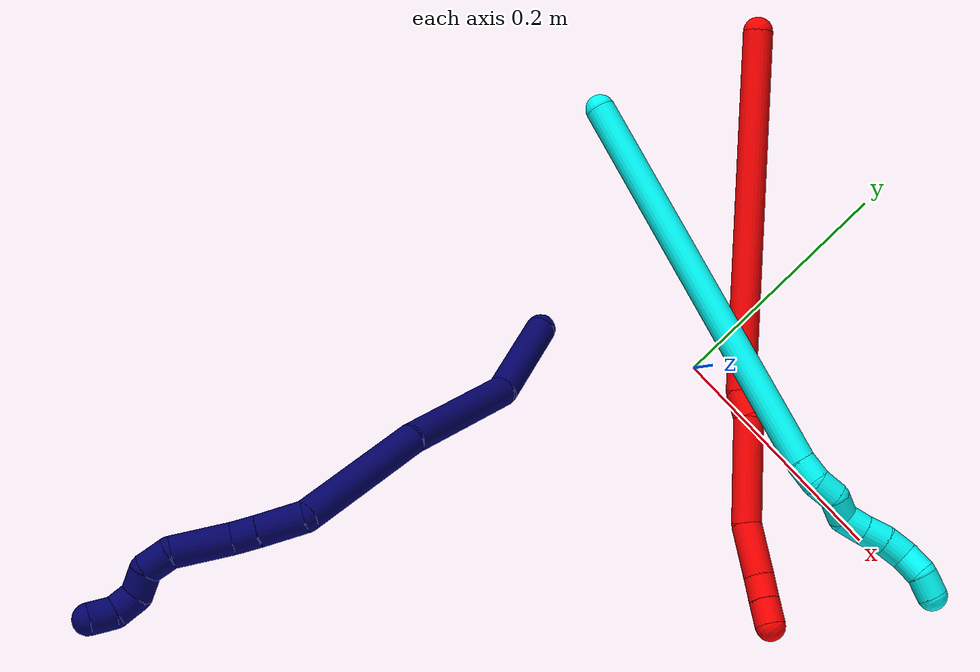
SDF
<sdf version="1.7">
 <world name="default">
  <model name="photoneo_s_sensor">
   <static>1</static>
   <pose>0 0 2 1.57079 1.57079 3.14159</pose>
   <link name="link">
    <inertial><mass>0.1</mass></inertial>
    <sensor name="sensor" type="depth">
     <update_rate>30</update_rate>
     <camera>
      <horizontal_fov>1.22</horizontal_fov>
      <image><width>1920</width><height>1200</height><format>B8G8R8</format></image>
      <clip><near>0.1</near><far>4</far></clip>
      <depth_camera><output>points</output></depth_camera>
     </camera>
     <plugin name="camera_plugin" filename="libgazebo_ros_depth_camera.so">
      <baseline>0.2</baseline>
      <alwaysOn>1</alwaysOn>
      <updateRate>0.0</updateRate>
      <cameraName>camera_ir</cameraName>
      <imageTopicName>/camera/color/image_raw</imageTopicName>
      <cameraInfoTopicName>/camera/color/camera_info</cameraInfoTopicName>
      <depthImageTopicName>/camera/depth/image_raw</depthImageTopicName>
      <depthImageCameraInfoTopicName>/camera/depth/camera_info</depthImageCameraInfoTopicName>
      <pointCloudTopicName>/camera/depth/points</pointCloudTopicName>
      <frameName>fr_optical</frameName>
      <pointCloudCutoff>0.1</pointCloudCutoff>
      <pointCloudCutoffMax>2.0</pointCloudCutoffMax>
      <distortionK1>0</distortionK1>
      <distortionK2>0</distortionK2>
      <distortionK3>0</distortionK3>
      <distortionT1>0</distortionT1>
      <distortionT2>0</distortionT2>
      <CxPrime>0</CxPrime>
      <Cx>0</Cx>
      <Cy>0</Cy>
      <focalLength>0</focalLength>
      <hackBaseline>0</hackBaseline>
     </plugin>
    </sensor>
   </link>
  </model>
  <model name="2">
   <static>0</static>
   <link name="2">
    <collision name="collision-cylinder-e_1_1_4">
     <pose>0.005657 -0.094956 -0.117462 2.46175 0.037437 0.105775</pose>
     <geometry><cylinder><radius>0.0125</radius><length>0.302297</length></cylinder></geometry>
     <surface>
      <friction><ode><mu>1.16</mu><mu2>1.16</mu2><slip1>0</slip1><slip2>0</slip2></ode></friction>
      <contact><ode><kp>1e+06</kp><kd>1</kd><max_vel>0</max_vel><min_depth>0.001</min_depth></ode></contact>
     </surface>
    </collision>
    <visual name="visual-cylinder-e_1_1_4">
     <pose>0.005657 -0.094956 -0.117462 2.46175 0.037437 0.105775</pose>
     <geometry><cylinder><radius>0.0125</radius><length>0.302297</length></cylinder></geometry>
     <material><ambient>1 0 0 1</ambient></material>
    </visual>
    <collision name="collision-cylinder-e_2_4_5">
     <pose>0.013407 -0.193536 -0.245707 2.81731 0.181901 1.01724</pose>
     <geometry><cylinder><radius>0.0125</radius><length>0.023133</length></cylinder></geometry>
     <surface>
      <friction><ode><mu>1.16</mu><mu2>1.16</mu2><slip1>0</slip1><slip2>0</slip2></ode></friction>
      <contact><ode><kp>1e+06</kp><kd>1</kd><max_vel>0</max_vel><min_depth>0.001</min_depth></ode></contact>
     </surface>
    </collision>
    <visual name="visual-cylinder-e_2_4_5">
     <pose>0.013407 -0.193536 -0.245707 2.81731 0.181901 1.01724</pose>
     <geometry><cylinder><radius>0.0125</radius><length>0.023133</length></cylinder></geometry>
     <material><ambient>1 0 0 1</ambient></material>
    </visual>
    <collision name="collision-cylinder-e_3_5_6">
     <pose>0.020701 -0.223216 -0.291618 2.50342 0.118365 0.354921</pose>
     <geometry><cylinder><radius>0.0125</radius><length>0.088088</length></cylinder></geometry>
     <surface>
      <friction><ode><mu>1.16</mu><mu2>1.16</mu2><slip1>0</slip1><slip2>0</slip2></ode></friction>
      <contact><ode><kp>1e+06</kp><kd>1</kd><max_vel>0</max_vel><min_depth>0.001</min_depth></ode></contact>
     </surface>
    </collision>
    <visual name="visual-cylinder-e_3_5_6">
     <pose>0.020701 -0.223216 -0.291618 2.50342 0.118365 0.354921</pose>
     <geometry><cylinder><radius>0.0125</radius><length>0.088088</length></cylinder></geometry>
     <material><ambient>1 0 0 1</ambient></material>
    </visual>
    <collision name="collision-cylinder-e_4_6_7">
     <pose>0.030174 -0.257177 -0.347206 2.77283 0.192346 0.954723</pose>
     <geometry><cylinder><radius>0.0125</radius><length>0.044694</length></cylinder></geometry>
     <surface>
      <friction><ode><mu>1.16</mu><mu2>1.16</mu2><slip1>0</slip1><slip2>0</slip2></ode></friction>
      <contact><ode><kp>1e+06</kp><kd>1</kd><max_vel>0</max_vel><min_depth>0.001</min_depth></ode></contact>
     </surface>
    </collision>
    <visual name="visual-cylinder-e_4_6_7">
     <pose>0.030174 -0.257177 -0.347206 2.77283 0.192346 0.954723</pose>
     <geometry><cylinder><radius>0.0125</radius><length>0.044694</length></cylinder></geometry>
     <material><ambient>1 0 0 1</ambient></material>
    </visual>
    <collision name="collision-cylinder-e_5_7_8">
     <pose>0.037202 -0.268607 -0.376773 2.77249 0.275183 1.2764</pose>
     <geometry><cylinder><radius>0.0125</radius><length>0.020293</length></cylinder></geometry>
     <surface>
      <friction><ode><mu>1.16</mu><mu2>1.16</mu2><slip1>0</slip1><slip2>0</slip2></ode></friction>
      <contact><ode><kp>1e+06</kp><kd>1</kd><max_vel>0</max_vel><min_depth>0.001</min_depth></ode></contact>
     </surface>
    </collision>
    <visual name="visual-cylinder-e_5_7_8">
     <pose>0.037202 -0.268607 -0.376773 2.77249 0.275183 1.2764</pose>
     <geometry><cylinder><radius>0.0125</radius><length>0.020293</length></cylinder></geometry>
     <material><ambient>1 0 0 1</ambient></material>
    </visual>
    <collision name="collision-cylinder-e_6_8_2">
     <pose>0.042664 -0.27573 -0.395639 2.78818 0.254413 1.24307</pose>
     <geometry><cylinder><radius>0.0125</radius><length>0.021494</length></cylinder></geometry>
     <surface>
      <friction><ode><mu>1.16</mu><mu2>1.16</mu2><slip1>0</slip1><slip2>0</slip2></ode></friction>
      <contact><ode><kp>1e+06</kp><kd>1</kd><max_vel>0</max_vel><min_depth>0.001</min_depth></ode></contact>
     </surface>
    </collision>
    <visual name="visual-cylinder-e_6_8_2">
     <pose>0.042664 -0.27573 -0.395639 2.78818 0.254413 1.24307</pose>
     <geometry><cylinder><radius>0.0125</radius><length>0.021494</length></cylinder></geometry>
     <material><ambient>1 0 0 1</ambient></material>
    </visual>
    <collision name="collision-sphere-2">
     <pose>0.045369 -0.27933 -0.405397 0 -0 0</pose>
     <geometry><sphere><radius>0.0125</radius></sphere></geometry>
     <surface>
      <friction><ode><mu>1.16</mu><mu2>1.16</mu2><slip1>0</slip1><slip2>0</slip2></ode></friction>
      <contact><ode><kp>1e+06</kp><kd>1</kd><max_vel>0</max_vel><min_depth>0.001</min_depth></ode></contact>
     </surface>
    </collision>
    <visual name="visual-sphere-2">
     <pose>0.045369 -0.27933 -0.405397 0 -0 0</pose>
     <geometry><sphere><radius>0.0125</radius></sphere></geometry>
     <material><ambient>1 0 0 1</ambient></material>
    </visual>
    <collision name="collision-sphere-4">
     <pose>0.011315 -0.189912 -0.234924 0 -0 0</pose>
     <geometry><sphere><radius>0.0125</radius></sphere></geometry>
     <surface>
      <friction><ode><mu>1.16</mu><mu2>1.16</mu2><slip1>0</slip1><slip2>0</slip2></ode></friction>
      <contact><ode><kp>1e+06</kp><kd>1</kd><max_vel>0</max_vel><min_depth>0.001</min_depth></ode></contact>
     </surface>
    </collision>
    <visual name="visual-sphere-4">
     <pose>0.011315 -0.189912 -0.234924 0 -0 0</pose>
     <geometry><sphere><radius>0.0125</radius></sphere></geometry>
     <material><ambient>1 0 0 1</ambient></material>
    </visual>
    <collision name="collision-sphere-1">
     <geometry><sphere><radius>0.0125</radius></sphere></geometry>
     <surface>
      <friction><ode><mu>1.16</mu><mu2>1.16</mu2><slip1>0</slip1><slip2>0</slip2></ode></friction>
      <contact><ode><kp>1e+06</kp><kd>1</kd><max_vel>0</max_vel><min_depth>0.001</min_depth></ode></contact>
     </surface>
    </collision>
    <visual name="visual-sphere-1">
     <geometry><sphere><radius>0.0125</radius></sphere></geometry>
     <material><ambient>1 0 0 1</ambient></material>
    </visual>
    <collision name="collision-sphere-8">
     <pose>0.039959 -0.27213 -0.38588 0 -0 0</pose>
     <geometry><sphere><radius>0.0125</radius></sphere></geometry>
     <surface>
      <friction><ode><mu>1.16</mu><mu2>1.16</mu2><slip1>0</slip1><slip2>0</slip2></ode></friction>
      <contact><ode><kp>1e+06</kp><kd>1</kd><max_vel>0</max_vel><min_depth>0.001</min_depth></ode></contact>
     </surface>
    </collision>
    <visual name="visual-sphere-8">
     <pose>0.039959 -0.27213 -0.38588 0 -0 0</pose>
     <geometry><sphere><radius>0.0125</radius></sphere></geometry>
     <material><ambient>1 0 0 1</ambient></material>
    </visual>
    <collision name="collision-sphere-5">
     <pose>0.015499 -0.197161 -0.25649 0 -0 0</pose>
     <geometry><sphere><radius>0.0125</radius></sphere></geometry>
     <surface>
      <friction><ode><mu>1.16</mu><mu2>1.16</mu2><slip1>0</slip1><slip2>0</slip2></ode></friction>
      <contact><ode><kp>1e+06</kp><kd>1</kd><max_vel>0</max_vel><min_depth>0.001</min_depth></ode></contact>
     </surface>
    </collision>
    <visual name="visual-sphere-5">
     <pose>0.015499 -0.197161 -0.25649 0 -0 0</pose>
     <geometry><sphere><radius>0.0125</radius></sphere></geometry>
     <material><ambient>1 0 0 1</ambient></material>
    </visual>
    <collision name="collision-sphere-6">
     <pose>0.025902 -0.24927 -0.326746 0 -0 0</pose>
     <geometry><sphere><radius>0.0125</radius></sphere></geometry>
     <surface>
      <friction><ode><mu>1.16</mu><mu2>1.16</mu2><slip1>0</slip1><slip2>0</slip2></ode></friction>
      <contact><ode><kp>1e+06</kp><kd>1</kd><max_vel>0</max_vel><min_depth>0.001</min_depth></ode></contact>
     </surface>
    </collision>
    <visual name="visual-sphere-6">
     <pose>0.025902 -0.24927 -0.326746 0 -0 0</pose>
     <geometry><sphere><radius>0.0125</radius></sphere></geometry>
     <material><ambient>1 0 0 1</ambient></material>
    </visual>
    <collision name="collision-sphere-7">
     <pose>0.034445 -0.265084 -0.367666 0 -0 0</pose>
     <geometry><sphere><radius>0.0125</radius></sphere></geometry>
     <surface>
      <friction><ode><mu>1.16</mu><mu2>1.16</mu2><slip1>0</slip1><slip2>0</slip2></ode></friction>
      <contact><ode><kp>1e+06</kp><kd>1</kd><max_vel>0</max_vel><min_depth>0.001</min_depth></ode></contact>
     </surface>
    </collision>
    <visual name="visual-sphere-7">
     <pose>0.034445 -0.265084 -0.367666 0 -0 0</pose>
     <geometry><sphere><radius>0.0125</radius></sphere></geometry>
     <material><ambient>1 0 0 1</ambient></material>
    </visual>
    <inertial>
     <pose>0.013729 -0.151433 -0.197097 0 -0 0</pose>
     <mass>0.5</mass>
     <inertia>
      <ixx>0.002643</ixx>
      <ixy>0</ixy>
      <ixz>0</ixz>
      <iyy>-0.001579</iyy>
      <iyz>0</iyz>
      <izz>0.001366</izz>
     </inertia>
    </inertial>
   </link>
   <pose>-0.166292 0.23387 0.012395 2.27134 -1.31508 -2.40078</pose>
  </model>
  <model name="3">
   <static>0</static>
   <link name="3">
    <collision name="collision-cylinder-e_1_1_4">
     <pose>0.030661 0.008361 0.166868 -0.050066 0.181495 -0.004557</pose>
     <geometry><cylinder><radius>0.0125</radius><length>0.339734</length></cylinder></geometry>
     <surface>
      <friction><ode><mu>1.16</mu><mu2>1.16</mu2><slip1>0</slip1><slip2>0</slip2></ode></friction>
      <contact><ode><kp>1e+06</kp><kd>1</kd><max_vel>0</max_vel><min_depth>0.001</min_depth></ode></contact>
     </surface>
    </collision>
    <visual name="visual-cylinder-e_1_1_4">
     <pose>0.030661 0.008361 0.166868 -0.050066 0.181495 -0.004557</pose>
     <geometry><cylinder><radius>0.0125</radius><length>0.339734</length></cylinder></geometry>
     <material><ambient>0.003922 1 0.996078 1</ambient></material>
    </visual>
    <collision name="collision-cylinder-e_2_4_5">
     <pose>0.06275 0.018568 0.343548 -0.185873 0.142025 -0.01326</pose>
     <geometry><cylinder><radius>0.0125</radius><length>0.020171</length></cylinder></geometry>
     <surface>
      <friction><ode><mu>1.16</mu><mu2>1.16</mu2><slip1>0</slip1><slip2>0</slip2></ode></friction>
      <contact><ode><kp>1e+06</kp><kd>1</kd><max_vel>0</max_vel><min_depth>0.001</min_depth></ode></contact>
     </surface>
    </collision>
    <visual name="visual-cylinder-e_2_4_5">
     <pose>0.06275 0.018568 0.343548 -0.185873 0.142025 -0.01326</pose>
     <geometry><cylinder><radius>0.0125</radius><length>0.020171</length></cylinder></geometry>
     <material><ambient>0.003922 1 0.996078 1</ambient></material>
    </visual>
    <collision name="collision-cylinder-e_3_5_6">
     <pose>0.067405 0.025483 0.361407 -0.56221 0.327114 -0.095234</pose>
     <geometry><cylinder><radius>0.0125</radius><length>0.020088</length></cylinder></geometry>
     <surface>
      <friction><ode><mu>1.16</mu><mu2>1.16</mu2><slip1>0</slip1><slip2>0</slip2></ode></friction>
      <contact><ode><kp>1e+06</kp><kd>1</kd><max_vel>0</max_vel><min_depth>0.001</min_depth></ode></contact>
     </surface>
    </collision>
    <visual name="visual-cylinder-e_3_5_6">
     <pose>0.067405 0.025483 0.361407 -0.56221 0.327114 -0.095234</pose>
     <geometry><cylinder><radius>0.0125</radius><length>0.020088</length></cylinder></geometry>
     <material><ambient>0.003922 1 0.996078 1</ambient></material>
    </visual>
    <collision name="collision-cylinder-e_4_6_7">
     <pose>0.077582 0.032336 0.376423 -0.250464 0.768172 -0.101672</pose>
     <geometry><cylinder><radius>0.0125</radius><length>0.020004</length></cylinder></geometry>
     <surface>
      <friction><ode><mu>1.16</mu><mu2>1.16</mu2><slip1>0</slip1><slip2>0</slip2></ode></friction>
      <contact><ode><kp>1e+06</kp><kd>1</kd><max_vel>0</max_vel><min_depth>0.001</min_depth></ode></contact>
     </surface>
    </collision>
    <visual name="visual-cylinder-e_4_6_7">
     <pose>0.077582 0.032336 0.376423 -0.250464 0.768172 -0.101672</pose>
     <geometry><cylinder><radius>0.0125</radius><length>0.020004</length></cylinder></geometry>
     <material><ambient>0.003922 1 0.996078 1</ambient></material>
    </visual>
    <collision name="collision-cylinder-e_5_7_8">
     <pose>0.086678 0.040128 0.391092 -0.662719 0.216389 -0.074704</pose>
     <geometry><cylinder><radius>0.0125</radius><length>0.020001</length></cylinder></geometry>
     <surface>
      <friction><ode><mu>1.16</mu><mu2>1.16</mu2><slip1>0</slip1><slip2>0</slip2></ode></friction>
      <contact><ode><kp>1e+06</kp><kd>1</kd><max_vel>0</max_vel><min_depth>0.001</min_depth></ode></contact>
     </surface>
    </collision>
    <visual name="visual-cylinder-e_5_7_8">
     <pose>0.086678 0.040128 0.391092 -0.662719 0.216389 -0.074704</pose>
     <geometry><cylinder><radius>0.0125</radius><length>0.020001</length></cylinder></geometry>
     <material><ambient>0.003922 1 0.996078 1</ambient></material>
    </visual>
    <collision name="collision-cylinder-e_6_8_9">
     <pose>0.0904 0.052677 0.406192 -0.723713 0.158083 -0.059945</pose>
     <geometry><cylinder><radius>0.0125</radius><length>0.020001</length></cylinder></geometry>
     <surface>
      <friction><ode><mu>1.16</mu><mu2>1.16</mu2><slip1>0</slip1><slip2>0</slip2></ode></friction>
      <contact><ode><kp>1e+06</kp><kd>1</kd><max_vel>0</max_vel><min_depth>0.001</min_depth></ode></contact>
     </surface>
    </collision>
    <visual name="visual-cylinder-e_6_8_9">
     <pose>0.0904 0.052677 0.406192 -0.723713 0.158083 -0.059945</pose>
     <geometry><cylinder><radius>0.0125</radius><length>0.020001</length></cylinder></geometry>
     <material><ambient>0.003922 1 0.996078 1</ambient></material>
    </visual>
    <collision name="collision-cylinder-e_7_9_10">
     <pose>0.094016 0.064096 0.42208 -0.521705 0.205601 -0.055062</pose>
     <geometry><cylinder><radius>0.0125</radius><length>0.02</length></cylinder></geometry>
     <surface>
      <friction><ode><mu>1.16</mu><mu2>1.16</mu2><slip1>0</slip1><slip2>0</slip2></ode></friction>
      <contact><ode><kp>1e+06</kp><kd>1</kd><max_vel>0</max_vel><min_depth>0.001</min_depth></ode></contact>
     </surface>
    </collision>
    <visual name="visual-cylinder-e_7_9_10">
     <pose>0.094016 0.064096 0.42208 -0.521705 0.205601 -0.055062</pose>
     <geometry><cylinder><radius>0.0125</radius><length>0.02</length></cylinder></geometry>
     <material><ambient>0.003922 1 0.996078 1</ambient></material>
    </visual>
    <collision name="collision-cylinder-e_8_10_11">
     <pose>0.096128 0.071299 0.440293 -0.234581 0.007109 -0.000838</pose>
     <geometry><cylinder><radius>0.0125</radius><length>0.02</length></cylinder></geometry>
     <surface>
      <friction><ode><mu>1.16</mu><mu2>1.16</mu2><slip1>0</slip1><slip2>0</slip2></ode></friction>
      <contact><ode><kp>1e+06</kp><kd>1</kd><max_vel>0</max_vel><min_depth>0.001</min_depth></ode></contact>
     </surface>
    </collision>
    <visual name="visual-cylinder-e_8_10_11">
     <pose>0.096128 0.071299 0.440293 -0.234581 0.007109 -0.000838</pose>
     <geometry><cylinder><radius>0.0125</radius><length>0.02</length></cylinder></geometry>
     <material><ambient>0.003922 1 0.996078 1</ambient></material>
    </visual>
    <collision name="collision-cylinder-e_9_11_2">
     <pose>0.100562 0.074636 0.45896 -0.112889 0.451481 -0.025952</pose>
     <geometry><cylinder><radius>0.0125</radius><length>0.02</length></cylinder></geometry>
     <surface>
      <friction><ode><mu>1.16</mu><mu2>1.16</mu2><slip1>0</slip1><slip2>0</slip2></ode></friction>
      <contact><ode><kp>1e+06</kp><kd>1</kd><max_vel>0</max_vel><min_depth>0.001</min_depth></ode></contact>
     </surface>
    </collision>
    <visual name="visual-cylinder-e_9_11_2">
     <pose>0.100562 0.074636 0.45896 -0.112889 0.451481 -0.025952</pose>
     <geometry><cylinder><radius>0.0125</radius><length>0.02</length></cylinder></geometry>
     <material><ambient>0.003922 1 0.996078 1</ambient></material>
    </visual>
    <collision name="collision-sphere-2">
     <pose>0.104925 0.07565 0.4679 0 -0 0</pose>
     <geometry><sphere><radius>0.0125</radius></sphere></geometry>
     <surface>
      <friction><ode><mu>1.16</mu><mu2>1.16</mu2><slip1>0</slip1><slip2>0</slip2></ode></friction>
      <contact><ode><kp>1e+06</kp><kd>1</kd><max_vel>0</max_vel><min_depth>0.001</min_depth></ode></contact>
     </surface>
    </collision>
    <visual name="visual-sphere-2">
     <pose>0.104925 0.07565 0.4679 0 -0 0</pose>
     <geometry><sphere><radius>0.0125</radius></sphere></geometry>
     <material><ambient>0.003922 1 0.996078 1</ambient></material>
    </visual>
    <collision name="collision-sphere-11">
     <pose>0.096199 0.073623 0.450019 0 -0 0</pose>
     <geometry><sphere><radius>0.0125</radius></sphere></geometry>
     <surface>
      <friction><ode><mu>1.16</mu><mu2>1.16</mu2><slip1>0</slip1><slip2>0</slip2></ode></friction>
      <contact><ode><kp>1e+06</kp><kd>1</kd><max_vel>0</max_vel><min_depth>0.001</min_depth></ode></contact>
     </surface>
    </collision>
    <visual name="visual-sphere-11">
     <pose>0.096199 0.073623 0.450019 0 -0 0</pose>
     <geometry><sphere><radius>0.0125</radius></sphere></geometry>
     <material><ambient>0.003922 1 0.996078 1</ambient></material>
    </visual>
    <collision name="collision-sphere-10">
     <pose>0.096057 0.068974 0.430567 0 -0 0</pose>
     <geometry><sphere><radius>0.0125</radius></sphere></geometry>
     <surface>
      <friction><ode><mu>1.16</mu><mu2>1.16</mu2><slip1>0</slip1><slip2>0</slip2></ode></friction>
      <contact><ode><kp>1e+06</kp><kd>1</kd><max_vel>0</max_vel><min_depth>0.001</min_depth></ode></contact>
     </surface>
    </collision>
    <visual name="visual-sphere-10">
     <pose>0.096057 0.068974 0.430567 0 -0 0</pose>
     <geometry><sphere><radius>0.0125</radius></sphere></geometry>
     <material><ambient>0.003922 1 0.996078 1</ambient></material>
    </visual>
    <collision name="collision-sphere-9">
     <pose>0.091974 0.059217 0.413593 0 -0 0</pose>
     <geometry><sphere><radius>0.0125</radius></sphere></geometry>
     <surface>
      <friction><ode><mu>1.16</mu><mu2>1.16</mu2><slip1>0</slip1><slip2>0</slip2></ode></friction>
      <contact><ode><kp>1e+06</kp><kd>1</kd><max_vel>0</max_vel><min_depth>0.001</min_depth></ode></contact>
     </surface>
    </collision>
    <visual name="visual-sphere-9">
     <pose>0.091974 0.059217 0.413593 0 -0 0</pose>
     <geometry><sphere><radius>0.0125</radius></sphere></geometry>
     <material><ambient>0.003922 1 0.996078 1</ambient></material>
    </visual>
    <collision name="collision-sphere-4">
     <pose>0.061322 0.016723 0.333735 0 -0 0</pose>
     <geometry><sphere><radius>0.0125</radius></sphere></geometry>
     <surface>
      <friction><ode><mu>1.16</mu><mu2>1.16</mu2><slip1>0</slip1><slip2>0</slip2></ode></friction>
      <contact><ode><kp>1e+06</kp><kd>1</kd><max_vel>0</max_vel><min_depth>0.001</min_depth></ode></contact>
     </surface>
    </collision>
    <visual name="visual-sphere-4">
     <pose>0.061322 0.016723 0.333735 0 -0 0</pose>
     <geometry><sphere><radius>0.0125</radius></sphere></geometry>
     <material><ambient>0.003922 1 0.996078 1</ambient></material>
    </visual>
    <collision name="collision-sphere-1">
     <geometry><sphere><radius>0.0125</radius></sphere></geometry>
     <surface>
      <friction><ode><mu>1.16</mu><mu2>1.16</mu2><slip1>0</slip1><slip2>0</slip2></ode></friction>
      <contact><ode><kp>1e+06</kp><kd>1</kd><max_vel>0</max_vel><min_depth>0.001</min_depth></ode></contact>
     </surface>
    </collision>
    <visual name="visual-sphere-1">
     <geometry><sphere><radius>0.0125</radius></sphere></geometry>
     <material><ambient>0.003922 1 0.996078 1</ambient></material>
    </visual>
    <collision name="collision-sphere-8">
     <pose>0.088825 0.046138 0.398792 0 -0 0</pose>
     <geometry><sphere><radius>0.0125</radius></sphere></geometry>
     <surface>
      <friction><ode><mu>1.16</mu><mu2>1.16</mu2><slip1>0</slip1><slip2>0</slip2></ode></friction>
      <contact><ode><kp>1e+06</kp><kd>1</kd><max_vel>0</max_vel><min_depth>0.001</min_depth></ode></contact>
     </surface>
    </collision>
    <visual name="visual-sphere-8">
     <pose>0.088825 0.046138 0.398792 0 -0 0</pose>
     <geometry><sphere><radius>0.0125</radius></sphere></geometry>
     <material><ambient>0.003922 1 0.996078 1</ambient></material>
    </visual>
    <collision name="collision-sphere-5">
     <pose>0.064178 0.020413 0.35336 0 -0 0</pose>
     <geometry><sphere><radius>0.0125</radius></sphere></geometry>
     <surface>
      <friction><ode><mu>1.16</mu><mu2>1.16</mu2><slip1>0</slip1><slip2>0</slip2></ode></friction>
      <contact><ode><kp>1e+06</kp><kd>1</kd><max_vel>0</max_vel><min_depth>0.001</min_depth></ode></contact>
     </surface>
    </collision>
    <visual name="visual-sphere-5">
     <pose>0.064178 0.020413 0.35336 0 -0 0</pose>
     <geometry><sphere><radius>0.0125</radius></sphere></geometry>
     <material><ambient>0.003922 1 0.996078 1</ambient></material>
    </visual>
    <collision name="collision-sphere-6">
     <pose>0.070632 0.030553 0.369455 0 -0 0</pose>
     <geometry><sphere><radius>0.0125</radius></sphere></geometry>
     <surface>
      <friction><ode><mu>1.16</mu><mu2>1.16</mu2><slip1>0</slip1><slip2>0</slip2></ode></friction>
      <contact><ode><kp>1e+06</kp><kd>1</kd><max_vel>0</max_vel><min_depth>0.001</min_depth></ode></contact>
     </surface>
    </collision>
    <visual name="visual-sphere-6">
     <pose>0.070632 0.030553 0.369455 0 -0 0</pose>
     <geometry><sphere><radius>0.0125</radius></sphere></geometry>
     <material><ambient>0.003922 1 0.996078 1</ambient></material>
    </visual>
    <collision name="collision-sphere-7">
     <pose>0.084531 0.034119 0.383392 0 -0 0</pose>
     <geometry><sphere><radius>0.0125</radius></sphere></geometry>
     <surface>
      <friction><ode><mu>1.16</mu><mu2>1.16</mu2><slip1>0</slip1><slip2>0</slip2></ode></friction>
      <contact><ode><kp>1e+06</kp><kd>1</kd><max_vel>0</max_vel><min_depth>0.001</min_depth></ode></contact>
     </surface>
    </collision>
    <visual name="visual-sphere-7">
     <pose>0.084531 0.034119 0.383392 0 -0 0</pose>
     <geometry><sphere><radius>0.0125</radius></sphere></geometry>
     <material><ambient>0.003922 1 0.996078 1</ambient></material>
    </visual>
    <inertial>
     <pose>0.047888 0.020862 0.241567 0 -0 0</pose>
     <mass>0.5</mass>
     <inertia>
      <ixx>0.003231</ixx>
      <ixy>0</ixy>
      <ixz>0</ixz>
      <iyy>0.003278</iyy>
      <iyz>0</iyz>
      <izz>-0.000725</izz>
     </inertia>
    </inertial>
   </link>
   <pose>-0.211158 0.09332 0.011494 -0.744505 1.05765 -1.06115</pose>
  </model>
  <model name="7">
   <static>0</static>
   <link name="7">
    <collision name="collision-cylinder-e_1_1_4">
     <pose>-0.006694 -0.000386 0.04086 0.009451 -0.162387 -0.000769</pose>
     <geometry><cylinder><radius>0.0125</radius><length>0.082813</length></cylinder></geometry>
     <surface>
      <friction><ode><mu>1.16</mu><mu2>1.16</mu2><slip1>0</slip1><slip2>0</slip2></ode></friction>
      <contact><ode><kp>1e+06</kp><kd>1</kd><max_vel>0</max_vel><min_depth>0.001</min_depth></ode></contact>
     </surface>
    </collision>
    <visual name="visual-cylinder-e_1_1_4">
     <pose>-0.006694 -0.000386 0.04086 0.009451 -0.162387 -0.000769</pose>
     <geometry><cylinder><radius>0.0125</radius><length>0.082813</length></cylinder></geometry>
     <material><ambient>0.003922 0 0.403922 1</ambient></material>
    </visual>
    <collision name="collision-cylinder-e_2_4_5">
     <pose>-0.027313 -0.0211 0.131278 0.38926 -0.254315 -0.050393</pose>
     <geometry><cylinder><radius>0.0125</radius><length>0.11069</length></cylinder></geometry>
     <surface>
      <friction><ode><mu>1.16</mu><mu2>1.16</mu2><slip1>0</slip1><slip2>0</slip2></ode></friction>
      <contact><ode><kp>1e+06</kp><kd>1</kd><max_vel>0</max_vel><min_depth>0.001</min_depth></ode></contact>
     </surface>
    </collision>
    <visual name="visual-cylinder-e_2_4_5">
     <pose>-0.027313 -0.0211 0.131278 0.38926 -0.254315 -0.050393</pose>
     <geometry><cylinder><radius>0.0125</radius><length>0.11069</length></cylinder></geometry>
     <material><ambient>0.003922 0 0.403922 1</ambient></material>
    </visual>
    <collision name="collision-cylinder-e_3_5_6">
     <pose>-0.045073 -0.059733 0.235964 0.320586 -0.065954 -0.010667</pose>
     <geometry><cylinder><radius>0.0125</radius><length>0.116429</length></cylinder></geometry>
     <surface>
      <friction><ode><mu>1.16</mu><mu2>1.16</mu2><slip1>0</slip1><slip2>0</slip2></ode></friction>
      <contact><ode><kp>1e+06</kp><kd>1</kd><max_vel>0</max_vel><min_depth>0.001</min_depth></ode></contact>
     </surface>
    </collision>
    <visual name="visual-cylinder-e_3_5_6">
     <pose>-0.045073 -0.059733 0.235964 0.320586 -0.065954 -0.010667</pose>
     <geometry><cylinder><radius>0.0125</radius><length>0.116429</length></cylinder></geometry>
     <material><ambient>0.003922 0 0.403922 1</ambient></material>
    </visual>
    <collision name="collision-cylinder-e_4_6_7">
     <pose>-0.040342 -0.090475 0.301721 0.863633 0.482434 0.225766</pose>
     <geometry><cylinder><radius>0.0125</radius><length>0.036935</length></cylinder></geometry>
     <surface>
      <friction><ode><mu>1.16</mu><mu2>1.16</mu2><slip1>0</slip1><slip2>0</slip2></ode></friction>
      <contact><ode><kp>1e+06</kp><kd>1</kd><max_vel>0</max_vel><min_depth>0.001</min_depth></ode></contact>
     </surface>
    </collision>
    <visual name="visual-cylinder-e_4_6_7">
     <pose>-0.040342 -0.090475 0.301721 0.863633 0.482434 0.225766</pose>
     <geometry><cylinder><radius>0.0125</radius><length>0.036935</length></cylinder></geometry>
     <material><ambient>0.003922 0 0.403922 1</ambient></material>
    </visual>
    <collision name="collision-cylinder-e_5_7_8">
     <pose>-0.026818 -0.110132 0.318059 0.90172 0.49396 0.242917</pose>
     <geometry><cylinder><radius>0.0125</radius><length>0.020909</length></cylinder></geometry>
     <surface>
      <friction><ode><mu>1.16</mu><mu2>1.16</mu2><slip1>0</slip1><slip2>0</slip2></ode></friction>
      <contact><ode><kp>1e+06</kp><kd>1</kd><max_vel>0</max_vel><min_depth>0.001</min_depth></ode></contact>
     </surface>
    </collision>
    <visual name="visual-cylinder-e_5_7_8">
     <pose>-0.026818 -0.110132 0.318059 0.90172 0.49396 0.242917</pose>
     <geometry><cylinder><radius>0.0125</radius><length>0.020909</length></cylinder></geometry>
     <material><ambient>0.003922 0 0.403922 1</ambient></material>
    </visual>
    <collision name="collision-cylinder-e_6_8_9">
     <pose>-0.016591 -0.134509 0.33916 0.839593 0.224788 0.100669</pose>
     <geometry><cylinder><radius>0.0125</radius><length>0.047288</length></cylinder></geometry>
     <surface>
      <friction><ode><mu>1.16</mu><mu2>1.16</mu2><slip1>0</slip1><slip2>0</slip2></ode></friction>
      <contact><ode><kp>1e+06</kp><kd>1</kd><max_vel>0</max_vel><min_depth>0.001</min_depth></ode></contact>
     </surface>
    </collision>
    <visual name="visual-cylinder-e_6_8_9">
     <pose>-0.016591 -0.134509 0.33916 0.839593 0.224788 0.100669</pose>
     <geometry><cylinder><radius>0.0125</radius><length>0.047288</length></cylinder></geometry>
     <material><ambient>0.003922 0 0.403922 1</ambient></material>
    </visual>
    <collision name="collision-cylinder-e_7_9_10">
     <pose>-0.004817 -0.156519 0.362456 0.550528 0.611503 0.17783</pose>
     <geometry><cylinder><radius>0.0125</radius><length>0.022657</length></cylinder></geometry>
     <surface>
      <friction><ode><mu>1.16</mu><mu2>1.16</mu2><slip1>0</slip1><slip2>0</slip2></ode></friction>
      <contact><ode><kp>1e+06</kp><kd>1</kd><max_vel>0</max_vel><min_depth>0.001</min_depth></ode></contact>
     </surface>
    </collision>
    <visual name="visual-cylinder-e_7_9_10">
     <pose>-0.004817 -0.156519 0.362456 0.550528 0.611503 0.17783</pose>
     <geometry><cylinder><radius>0.0125</radius><length>0.022657</length></cylinder></geometry>
     <material><ambient>0.003922 0 0.403922 1</ambient></material>
    </visual>
    <collision name="collision-cylinder-e_8_10_11">
     <pose>0.010016 -0.159779 0.377418 -0.221914 0.855639 -0.101519</pose>
     <geometry><cylinder><radius>0.0125</radius><length>0.022064</length></cylinder></geometry>
     <surface>
      <friction><ode><mu>1.16</mu><mu2>1.16</mu2><slip1>0</slip1><slip2>0</slip2></ode></friction>
      <contact><ode><kp>1e+06</kp><kd>1</kd><max_vel>0</max_vel><min_depth>0.001</min_depth></ode></contact>
     </surface>
    </collision>
    <visual name="visual-cylinder-e_8_10_11">
     <pose>0.010016 -0.159779 0.377418 -0.221914 0.855639 -0.101519</pose>
     <geometry><cylinder><radius>0.0125</radius><length>0.022064</length></cylinder></geometry>
     <material><ambient>0.003922 0 0.403922 1</ambient></material>
    </visual>
    <collision name="collision-cylinder-e_9_11_12">
     <pose>0.021446 -0.161643 0.393367 0.370683 0.314291 0.0594</pose>
     <geometry><cylinder><radius>0.0125</radius><length>0.020062</length></cylinder></geometry>
     <surface>
      <friction><ode><mu>1.16</mu><mu2>1.16</mu2><slip1>0</slip1><slip2>0</slip2></ode></friction>
      <contact><ode><kp>1e+06</kp><kd>1</kd><max_vel>0</max_vel><min_depth>0.001</min_depth></ode></contact>
     </surface>
    </collision>
    <visual name="visual-cylinder-e_9_11_12">
     <pose>0.021446 -0.161643 0.393367 0.370683 0.314291 0.0594</pose>
     <geometry><cylinder><radius>0.0125</radius><length>0.020062</length></cylinder></geometry>
     <material><ambient>0.003922 0 0.403922 1</ambient></material>
    </visual>
    <collision name="collision-cylinder-e_10_12_2">
     <pose>0.025961 -0.172087 0.409378 0.776062 0.140798 0.057631</pose>
     <geometry><cylinder><radius>0.0125</radius><length>0.020153</length></cylinder></geometry>
     <surface>
      <friction><ode><mu>1.16</mu><mu2>1.16</mu2><slip1>0</slip1><slip2>0</slip2></ode></friction>
      <contact><ode><kp>1e+06</kp><kd>1</kd><max_vel>0</max_vel><min_depth>0.001</min_depth></ode></contact>
     </surface>
    </collision>
    <visual name="visual-cylinder-e_10_12_2">
     <pose>0.025961 -0.172087 0.409378 0.776062 0.140798 0.057631</pose>
     <geometry><cylinder><radius>0.0125</radius><length>0.020153</length></cylinder></geometry>
     <material><ambient>0.003922 0 0.403922 1</ambient></material>
    </visual>
    <collision name="collision-sphere-2">
     <pose>0.027375 -0.179075 0.416498 0 -0 0</pose>
     <geometry><sphere><radius>0.0125</radius></sphere></geometry>
     <surface>
      <friction><ode><mu>1.16</mu><mu2>1.16</mu2><slip1>0</slip1><slip2>0</slip2></ode></friction>
      <contact><ode><kp>1e+06</kp><kd>1</kd><max_vel>0</max_vel><min_depth>0.001</min_depth></ode></contact>
     </surface>
    </collision>
    <visual name="visual-sphere-2">
     <pose>0.027375 -0.179075 0.416498 0 -0 0</pose>
     <geometry><sphere><radius>0.0125</radius></sphere></geometry>
     <material><ambient>0.003922 0 0.403922 1</ambient></material>
    </visual>
    <collision name="collision-sphere-12">
     <pose>0.024547 -0.165098 0.402258 0 -0 0</pose>
     <geometry><sphere><radius>0.0125</radius></sphere></geometry>
     <surface>
      <friction><ode><mu>1.16</mu><mu2>1.16</mu2><slip1>0</slip1><slip2>0</slip2></ode></friction>
      <contact><ode><kp>1e+06</kp><kd>1</kd><max_vel>0</max_vel><min_depth>0.001</min_depth></ode></contact>
     </surface>
    </collision>
    <visual name="visual-sphere-12">
     <pose>0.024547 -0.165098 0.402258 0 -0 0</pose>
     <geometry><sphere><radius>0.0125</radius></sphere></geometry>
     <material><ambient>0.003922 0 0.403922 1</ambient></material>
    </visual>
    <collision name="collision-sphere-11">
     <pose>0.018345 -0.158187 0.384475 0 -0 0</pose>
     <geometry><sphere><radius>0.0125</radius></sphere></geometry>
     <surface>
      <friction><ode><mu>1.16</mu><mu2>1.16</mu2><slip1>0</slip1><slip2>0</slip2></ode></friction>
      <contact><ode><kp>1e+06</kp><kd>1</kd><max_vel>0</max_vel><min_depth>0.001</min_depth></ode></contact>
     </surface>
    </collision>
    <visual name="visual-sphere-11">
     <pose>0.018345 -0.158187 0.384475 0 -0 0</pose>
     <geometry><sphere><radius>0.0125</radius></sphere></geometry>
     <material><ambient>0.003922 0 0.403922 1</ambient></material>
    </visual>
    <collision name="collision-sphere-10">
     <pose>0.001687 -0.161371 0.370361 0 -0 0</pose>
     <geometry><sphere><radius>0.0125</radius></sphere></geometry>
     <surface>
      <friction><ode><mu>1.16</mu><mu2>1.16</mu2><slip1>0</slip1><slip2>0</slip2></ode></friction>
      <contact><ode><kp>1e+06</kp><kd>1</kd><max_vel>0</max_vel><min_depth>0.001</min_depth></ode></contact>
     </surface>
    </collision>
    <visual name="visual-sphere-10">
     <pose>0.001687 -0.161371 0.370361 0 -0 0</pose>
     <geometry><sphere><radius>0.0125</radius></sphere></geometry>
     <material><ambient>0.003922 0 0.403922 1</ambient></material>
    </visual>
    <collision name="collision-sphere-9">
     <pose>-0.011321 -0.151667 0.354551 0 -0 0</pose>
     <geometry><sphere><radius>0.0125</radius></sphere></geometry>
     <surface>
      <friction><ode><mu>1.16</mu><mu2>1.16</mu2><slip1>0</slip1><slip2>0</slip2></ode></friction>
      <contact><ode><kp>1e+06</kp><kd>1</kd><max_vel>0</max_vel><min_depth>0.001</min_depth></ode></contact>
     </surface>
    </collision>
    <visual name="visual-sphere-9">
     <pose>-0.011321 -0.151667 0.354551 0 -0 0</pose>
     <geometry><sphere><radius>0.0125</radius></sphere></geometry>
     <material><ambient>0.003922 0 0.403922 1</ambient></material>
    </visual>
    <collision name="collision-sphere-4">
     <pose>-0.013389 -0.000772 0.08172 0 -0 0</pose>
     <geometry><sphere><radius>0.0125</radius></sphere></geometry>
     <surface>
      <friction><ode><mu>1.16</mu><mu2>1.16</mu2><slip1>0</slip1><slip2>0</slip2></ode></friction>
      <contact><ode><kp>1e+06</kp><kd>1</kd><max_vel>0</max_vel><min_depth>0.001</min_depth></ode></contact>
     </surface>
    </collision>
    <visual name="visual-sphere-4">
     <pose>-0.013389 -0.000772 0.08172 0 -0 0</pose>
     <geometry><sphere><radius>0.0125</radius></sphere></geometry>
     <material><ambient>0.003922 0 0.403922 1</ambient></material>
    </visual>
    <collision name="collision-sphere-1">
     <geometry><sphere><radius>0.0125</radius></sphere></geometry>
     <surface>
      <friction><ode><mu>1.16</mu><mu2>1.16</mu2><slip1>0</slip1><slip2>0</slip2></ode></friction>
      <contact><ode><kp>1e+06</kp><kd>1</kd><max_vel>0</max_vel><min_depth>0.001</min_depth></ode></contact>
     </surface>
    </collision>
    <visual name="visual-sphere-1">
     <geometry><sphere><radius>0.0125</radius></sphere></geometry>
     <material><ambient>0.003922 0 0.403922 1</ambient></material>
    </visual>
    <collision name="collision-sphere-8">
     <pose>-0.021861 -0.117352 0.323768 0 -0 0</pose>
     <geometry><sphere><radius>0.0125</radius></sphere></geometry>
     <surface>
      <friction><ode><mu>1.16</mu><mu2>1.16</mu2><slip1>0</slip1><slip2>0</slip2></ode></friction>
      <contact><ode><kp>1e+06</kp><kd>1</kd><max_vel>0</max_vel><min_depth>0.001</min_depth></ode></contact>
     </surface>
    </collision>
    <visual name="visual-sphere-8">
     <pose>-0.021861 -0.117352 0.323768 0 -0 0</pose>
     <geometry><sphere><radius>0.0125</radius></sphere></geometry>
     <material><ambient>0.003922 0 0.403922 1</ambient></material>
    </visual>
    <collision name="collision-sphere-5">
     <pose>-0.041236 -0.041429 0.180835 0 -0 0</pose>
     <geometry><sphere><radius>0.0125</radius></sphere></geometry>
     <surface>
      <friction><ode><mu>1.16</mu><mu2>1.16</mu2><slip1>0</slip1><slip2>0</slip2></ode></friction>
      <contact><ode><kp>1e+06</kp><kd>1</kd><max_vel>0</max_vel><min_depth>0.001</min_depth></ode></contact>
     </surface>
    </collision>
    <visual name="visual-sphere-5">
     <pose>-0.041236 -0.041429 0.180835 0 -0 0</pose>
     <geometry><sphere><radius>0.0125</radius></sphere></geometry>
     <material><ambient>0.003922 0 0.403922 1</ambient></material>
    </visual>
    <collision name="collision-sphere-6">
     <pose>-0.04891 -0.078038 0.291092 0 -0 0</pose>
     <geometry><sphere><radius>0.0125</radius></sphere></geometry>
     <surface>
      <friction><ode><mu>1.16</mu><mu2>1.16</mu2><slip1>0</slip1><slip2>0</slip2></ode></friction>
      <contact><ode><kp>1e+06</kp><kd>1</kd><max_vel>0</max_vel><min_depth>0.001</min_depth></ode></contact>
     </surface>
    </collision>
    <visual name="visual-sphere-6">
     <pose>-0.04891 -0.078038 0.291092 0 -0 0</pose>
     <geometry><sphere><radius>0.0125</radius></sphere></geometry>
     <material><ambient>0.003922 0 0.403922 1</ambient></material>
    </visual>
    <collision name="collision-sphere-7">
     <pose>-0.031774 -0.102912 0.312349 0 -0 0</pose>
     <geometry><sphere><radius>0.0125</radius></sphere></geometry>
     <surface>
      <friction><ode><mu>1.16</mu><mu2>1.16</mu2><slip1>0</slip1><slip2>0</slip2></ode></friction>
      <contact><ode><kp>1e+06</kp><kd>1</kd><max_vel>0</max_vel><min_depth>0.001</min_depth></ode></contact>
     </surface>
    </collision>
    <visual name="visual-sphere-7">
     <pose>-0.031774 -0.102912 0.312349 0 -0 0</pose>
     <geometry><sphere><radius>0.0125</radius></sphere></geometry>
     <material><ambient>0.003922 0 0.403922 1</ambient></material>
    </visual>
    <inertial>
     <pose>-0.021191 -0.07022 0.223804 0 -0 0</pose>
     <mass>0.5</mass>
     <inertia>
      <ixx>0.000319</ixx>
      <ixy>0</ixy>
      <ixz>0</ixz>
      <iyy>0.000289</iyy>
      <iyz>0</iyz>
      <izz>0.000171</izz>
     </inertia>
    </inertial>
   </link>
   <pose>-0.112936 -0.070641 0.011497 0.008847 0.978972 -1.28512</pose>
  </model>
 </world>
</sdf>
